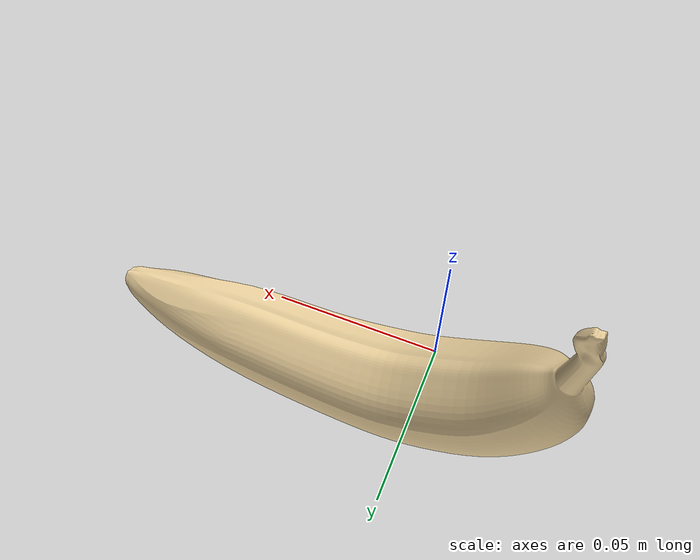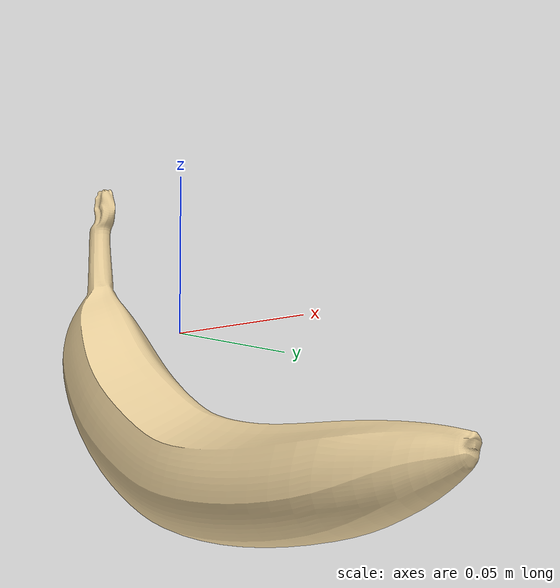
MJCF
<mujoco model="pnp_banana">
    <compiler angle="degree" coordinate="local" />
    <option timestep="0.01" gravity="0 0 -9.81" density="1000" angularDamping="1"/>

    <asset>
        <mesh name="banana_vis" file="visual/banana.stl" scale="0.001 0.001 0.001" />
        <mesh name="banana_mesh" file="collision/banana.stl" scale="0.001 0.001 0.001" />
        <material name="mat" rgba="0.9 0.8 0.6 1" specular="0.0" shininess="0.0"/>
    </asset>

    <worldbody>
        <body>
            <body name="object" pos="0 0 0">
                <geom solimp="0.998 0.998 0.001"
                      solref="0.001 1"
                      density="100"
                      friction="0.8 0.3 0.1"
                      type="mesh"
                      mesh="banana_vis"
                      conaffinity="0"
                      contype="0"
                      group="1"
                      material="mat" />
                <geom name="banana_geom"
                      type="mesh"
                      mesh="banana_mesh"
                      rgba="0.9 0.8 0.6 1"
                      mass="0.5"
                      group="0"
                      friction="0.8 0.3 0.1" />
            </body>
            <site rgba="0 0 0 0" size="0.005" pos="1.8000000023832283e-09 0.0001579002000000018 -0.03245274" name="bottom_site"/>
            <site rgba="0 0 0 0" size="0.005" pos="1.8000000023832283e-09 0.0001579002000000018 0.033050489999999995" name="top_site"/>
            <site rgba="0 0 0 0" size="0.005" pos="0.05891761439999999 0.057567376799999986 0.0002988749999999995" name="horizontal_radius_site"/>
        </body>
    </worldbody>
</mujoco>
